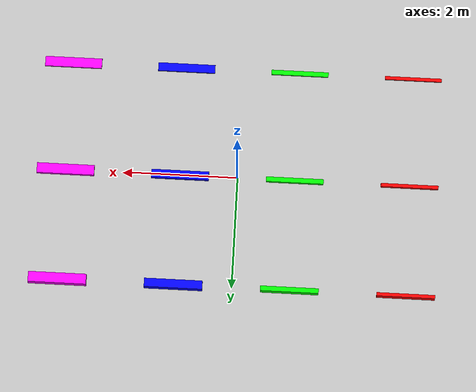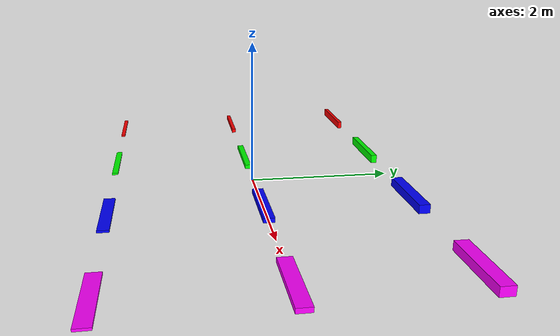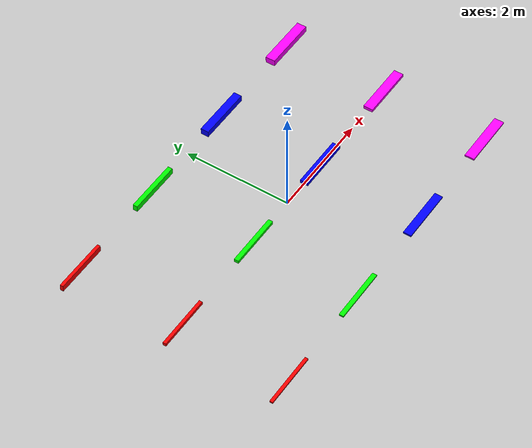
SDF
<sdf version="1.4">
 <world name="default">
  <physics type="ode">
   <max_step_size>0.01</max_step_size>
   <real_time_update_rate>100</real_time_update_rate>
  </physics>
  <include><uri>model://sun</uri></include>
  <model name="box1">
   <static>true</static>
   <pose>-3 0 0.03 0 0 0</pose>
   <link name="link">
    <collision name="collision"><geometry><box><size>1 0.06 0.06</size></box></geometry></collision>
    <visual name="visual">
     <geometry><box><size>1 0.06 0.06</size></box></geometry>
     <material><ambient>1 0 0 1</ambient><diffuse>1 0 0 1</diffuse></material>
    </visual>
   </link>
  </model>
  <model name="box10">
   <static>true</static>
   <pose>-3 -2 0.015 0 0 0</pose>
   <link name="link">
    <collision name="collision"><geometry><box><size>1 0.06 0.03</size></box></geometry></collision>
    <visual name="visual">
     <geometry><box><size>1 0.06 0.03</size></box></geometry>
     <material><ambient>1 0 0 1</ambient><diffuse>1 0 0 1</diffuse></material>
    </visual>
   </link>
  </model>
  <model name="box12">
   <static>true</static>
   <pose>-3 2 0.06 0 0 0</pose>
   <link name="link">
    <collision name="collision"><geometry><box><size>1 0.06 0.12</size></box></geometry></collision>
    <visual name="visual">
     <geometry><box><size>1 0.06 0.12</size></box></geometry>
     <material><ambient>1 0 0 1</ambient><diffuse>1 0 0 1</diffuse></material>
    </visual>
   </link>
  </model>
  <model name="box2">
   <static>true</static>
   <pose>-1 0 0.03 0 0 0</pose>
   <link name="link">
    <collision name="collision"><geometry><box><size>1 0.085 0.06</size></box></geometry></collision>
    <visual name="visual">
     <geometry><box><size>1 0.085 0.06</size></box></geometry>
     <material><ambient>0 1 0 1</ambient><diffuse>0 1 0 1</diffuse></material>
    </visual>
   </link>
  </model>
  <model name="box20">
   <static>true</static>
   <pose>-1 -2 0.015 0 0 0</pose>
   <link name="link">
    <collision name="collision"><geometry><box><size>1 0.085 0.03</size></box></geometry></collision>
    <visual name="visual">
     <geometry><box><size>1 0.085 0.03</size></box></geometry>
     <material><ambient>0 1 0 1</ambient><diffuse>0 1 0 1</diffuse></material>
    </visual>
   </link>
  </model>
  <model name="box22">
   <static>true</static>
   <pose>-1 2 0.06 0 0 0</pose>
   <link name="link">
    <collision name="collision"><geometry><box><size>1 0.085 0.12</size></box></geometry></collision>
    <visual name="visual">
     <geometry><box><size>1 0.085 0.12</size></box></geometry>
     <material><ambient>0 1 0 1</ambient><diffuse>0 1 0 1</diffuse></material>
    </visual>
   </link>
  </model>
  <model name="box3">
   <static>true</static>
   <pose>1 0 0.03 0 0 0</pose>
   <link name="link">
    <collision name="collision"><geometry><box><size>1 0.15 0.06</size></box></geometry></collision>
    <visual name="visual">
     <geometry><box><size>1 0.15 0.06</size></box></geometry>
     <material><ambient>0 0 1 1</ambient><diffuse>0 0 1 1</diffuse></material>
    </visual>
   </link>
  </model>
  <model name="box30">
   <static>true</static>
   <pose>1 -2 0.015 0 0 0</pose>
   <link name="link">
    <collision name="collision"><geometry><box><size>1 0.15 0.03</size></box></geometry></collision>
    <visual name="visual">
     <geometry><box><size>1 0.15 0.03</size></box></geometry>
     <material><ambient>0 0 1 1</ambient><diffuse>0 0 1 1</diffuse></material>
    </visual>
   </link>
  </model>
  <model name="box32">
   <static>true</static>
   <pose>1 2 0.06 0 0 0</pose>
   <link name="link">
    <collision name="collision"><geometry><box><size>1 0.15 0.12</size></box></geometry></collision>
    <visual name="visual">
     <geometry><box><size>1 0.15 0.12</size></box></geometry>
     <material><ambient>0 0 1 1</ambient><diffuse>0 0 1 1</diffuse></material>
    </visual>
   </link>
  </model>
  <model name="box4">
   <static>true</static>
   <pose>3 0 0.03 0 0 0</pose>
   <link name="link">
    <collision name="collision"><geometry><box><size>1 0.18 0.06</size></box></geometry></collision>
    <visual name="visual">
     <geometry><box><size>1 0.18 0.06</size></box></geometry>
     <material><ambient>1 0 1 1</ambient><diffuse>1 0 1 1</diffuse></material>
    </visual>
   </link>
  </model>
  <model name="box40">
   <static>true</static>
   <pose>3 -2 0.015 0 0 0</pose>
   <link name="link">
    <collision name="collision"><geometry><box><size>1 0.18 0.03</size></box></geometry></collision>
    <visual name="visual">
     <geometry><box><size>1 0.18 0.03</size></box></geometry>
     <material><ambient>1 0 1 1</ambient><diffuse>1 0 1 1</diffuse></material>
    </visual>
   </link>
  </model>
  <model name="box42">
   <static>true</static>
   <pose>3 2 0.06 0 0 0</pose>
   <link name="link">
    <collision name="collision"><geometry><box><size>1 0.18 0.12</size></box></geometry></collision>
    <visual name="visual">
     <geometry><box><size>1 0.18 0.12</size></box></geometry>
     <material><ambient>1 0 1 1</ambient><diffuse>1 0 1 1</diffuse></material>
    </visual>
   </link>
  </model>
 </world>
</sdf>
